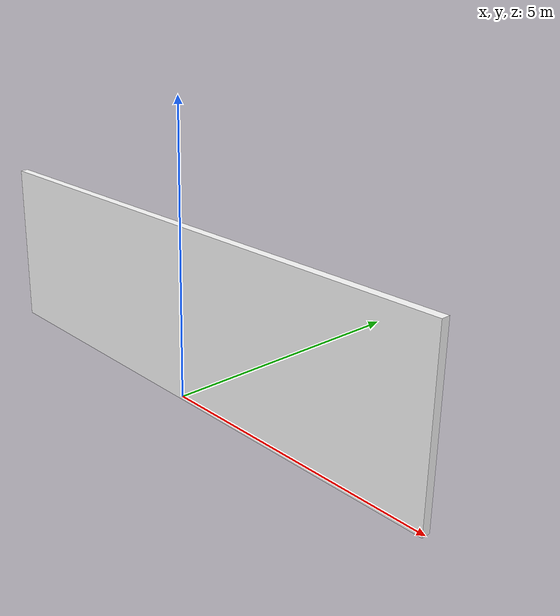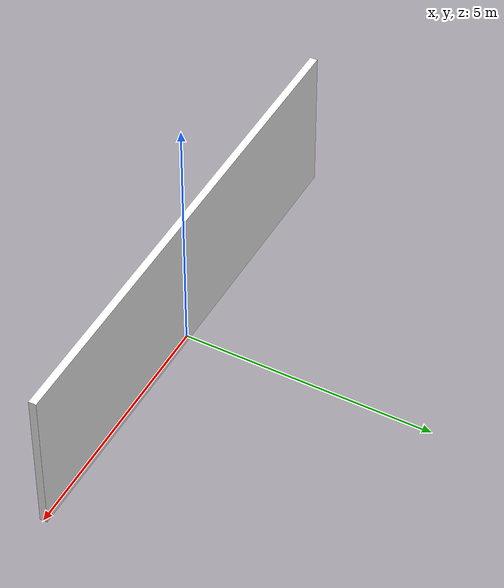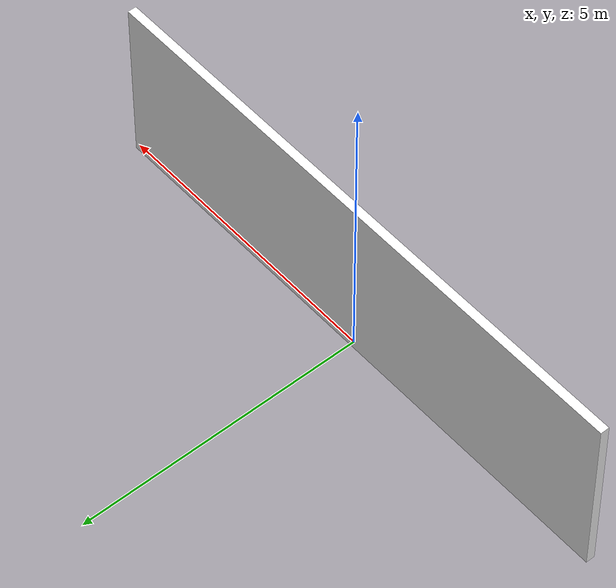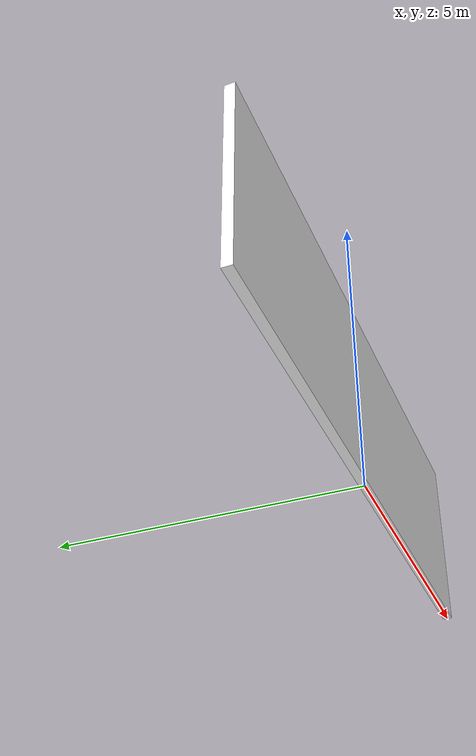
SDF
<?xml version="1.0"?>
<sdf version="1.11">
  <model name="wall_10x0.15x3">
    <static>true</static>
    <link name="body">
      <inertial>
        <mass>1.0</mass>
        <inertia>
          <ixx>1.0</ixx>
          <iyy>1.0</iyy>
          <izz>1.0</izz>
          <ixy>0.0</ixy>
          <ixz>0.0</ixz>
          <iyz>0.0</iyz>
        </inertia>
      </inertial>
      <collision name="collision">
        <density>10.0</density>
        <geometry>
          <mesh optimization="convex_decomposition">
            <uri>models://wall_10x0.15x3/mesh.stl</uri>
          </mesh>
        </geometry>
      </collision>
      <visual name="visual">
        <geometry>
          <mesh>
            <uri>models://wall_10x0.15x3/mesh.stl</uri>
          </mesh>
        </geometry>
          <material>
            <ambient>1 1 1 1</ambient>
            <diffuse>1 1 1 1</diffuse>
            <specular>0.2 0.2 0.2 1</specular>
          </material>
      </visual>
    </link>
  </model>
</sdf>
